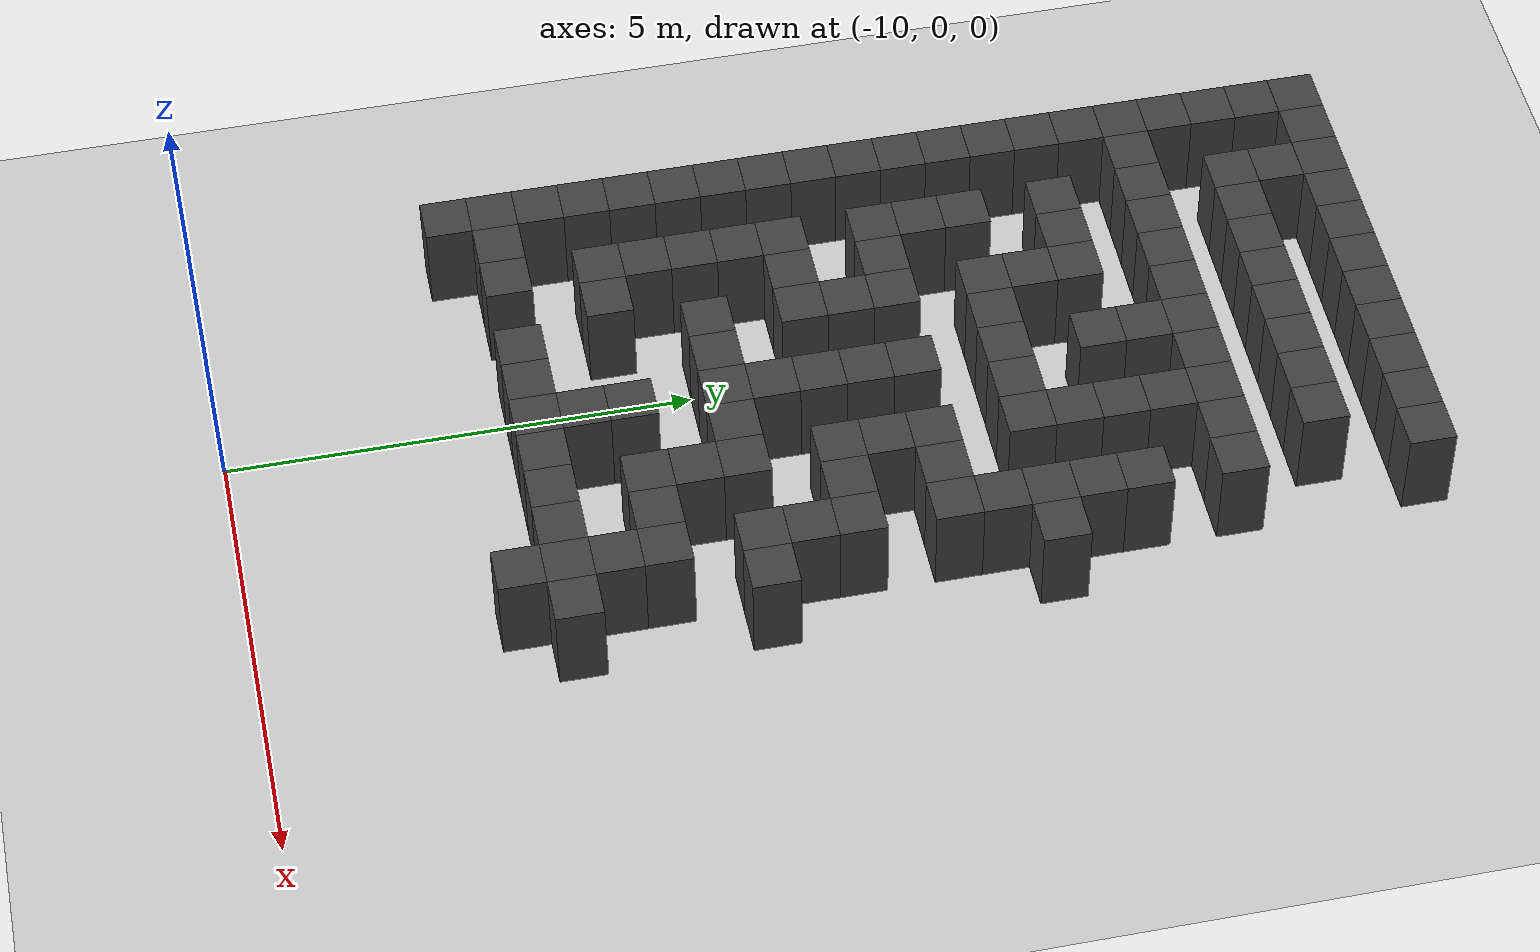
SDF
<sdf version="1.7">
 <world name="map_18914">
  <model name="ground_plane">
   <static>true</static>
   <link name="link">
    <collision name="collision">
     <geometry><plane><normal>0 0 1</normal><size>200 200</size></plane></geometry>
    </collision>
    <visual name="visual">
     <geometry><plane><normal>0 0 1</normal><size>200 200</size></plane></geometry>
     <material><ambient>0.8 0.8 0.8 1</ambient><diffuse>0.8 0.8 0.8 1</diffuse></material>
    </visual>
   </link>
  </model>
  <model name="maze_environment">
   <static>true</static>
   <link name="wall_0">
    <pose>-12.250 12.250 0.500 0 0 0</pose>
    <collision name="col"><geometry><box><size>0.5 0.5 1.0</size></box></geometry></collision>
    <visual name="vis">
     <geometry><box><size>0.5 0.5 1.0</size></box></geometry>
     <material><ambient>0.15 0.15 0.15 1</ambient><diffuse>0.25 0.25 0.25 1</diffuse></material>
    </visual>
   </link>
   <link name="wall_1">
    <pose>-11.750 12.250 0.500 0 0 0</pose>
    <collision name="col"><geometry><box><size>0.5 0.5 1.0</size></box></geometry></collision>
    <visual name="vis">
     <geometry><box><size>0.5 0.5 1.0</size></box></geometry>
     <material><ambient>0.15 0.15 0.15 1</ambient><diffuse>0.25 0.25 0.25 1</diffuse></material>
    </visual>
   </link>
   <link name="wall_2">
    <pose>-11.250 12.250 0.500 0 0 0</pose>
    <collision name="col"><geometry><box><size>0.5 0.5 1.0</size></box></geometry></collision>
    <visual name="vis">
     <geometry><box><size>0.5 0.5 1.0</size></box></geometry>
     <material><ambient>0.15 0.15 0.15 1</ambient><diffuse>0.25 0.25 0.25 1</diffuse></material>
    </visual>
   </link>
   <link name="wall_3">
    <pose>-10.750 12.250 0.500 0 0 0</pose>
    <collision name="col"><geometry><box><size>0.5 0.5 1.0</size></box></geometry></collision>
    <visual name="vis">
     <geometry><box><size>0.5 0.5 1.0</size></box></geometry>
     <material><ambient>0.15 0.15 0.15 1</ambient><diffuse>0.25 0.25 0.25 1</diffuse></material>
    </visual>
   </link>
   <link name="wall_4">
    <pose>-10.250 12.250 0.500 0 0 0</pose>
    <collision name="col"><geometry><box><size>0.5 0.5 1.0</size></box></geometry></collision>
    <visual name="vis">
     <geometry><box><size>0.5 0.5 1.0</size></box></geometry>
     <material><ambient>0.15 0.15 0.15 1</ambient><diffuse>0.25 0.25 0.25 1</diffuse></material>
    </visual>
   </link>
   <link name="wall_5">
    <pose>-9.750 12.250 0.500 0 0 0</pose>
    <collision name="col"><geometry><box><size>0.5 0.5 1.0</size></box></geometry></collision>
    <visual name="vis">
     <geometry><box><size>0.5 0.5 1.0</size></box></geometry>
     <material><ambient>0.15 0.15 0.15 1</ambient><diffuse>0.25 0.25 0.25 1</diffuse></material>
    </visual>
   </link>
   <link name="wall_6">
    <pose>-9.250 12.250 0.500 0 0 0</pose>
    <collision name="col"><geometry><box><size>0.5 0.5 1.0</size></box></geometry></collision>
    <visual name="vis">
     <geometry><box><size>0.5 0.5 1.0</size></box></geometry>
     <material><ambient>0.15 0.15 0.15 1</ambient><diffuse>0.25 0.25 0.25 1</diffuse></material>
    </visual>
   </link>
   <link name="wall_7">
    <pose>-8.750 12.250 0.500 0 0 0</pose>
    <collision name="col"><geometry><box><size>0.5 0.5 1.0</size></box></geometry></collision>
    <visual name="vis">
     <geometry><box><size>0.5 0.5 1.0</size></box></geometry>
     <material><ambient>0.15 0.15 0.15 1</ambient><diffuse>0.25 0.25 0.25 1</diffuse></material>
    </visual>
   </link>
   <link name="wall_8">
    <pose>-8.250 12.250 0.500 0 0 0</pose>
    <collision name="col"><geometry><box><size>0.5 0.5 1.0</size></box></geometry></collision>
    <visual name="vis">
     <geometry><box><size>0.5 0.5 1.0</size></box></geometry>
     <material><ambient>0.15 0.15 0.15 1</ambient><diffuse>0.25 0.25 0.25 1</diffuse></material>
    </visual>
   </link>
   <link name="wall_9">
    <pose>-7.750 12.250 0.500 0 0 0</pose>
    <collision name="col"><geometry><box><size>0.5 0.5 1.0</size></box></geometry></collision>
    <visual name="vis">
     <geometry><box><size>0.5 0.5 1.0</size></box></geometry>
     <material><ambient>0.15 0.15 0.15 1</ambient><diffuse>0.25 0.25 0.25 1</diffuse></material>
    </visual>
   </link>
   <link name="wall_10">
    <pose>-7.250 12.250 0.500 0 0 0</pose>
    <collision name="col"><geometry><box><size>0.5 0.5 1.0</size></box></geometry></collision>
    <visual name="vis">
     <geometry><box><size>0.5 0.5 1.0</size></box></geometry>
     <material><ambient>0.15 0.15 0.15 1</ambient><diffuse>0.25 0.25 0.25 1</diffuse></material>
    </visual>
   </link>
   <link name="wall_50">
    <pose>-12.250 11.750 0.500 0 0 0</pose>
    <collision name="col"><geometry><box><size>0.5 0.5 1.0</size></box></geometry></collision>
    <visual name="vis">
     <geometry><box><size>0.5 0.5 1.0</size></box></geometry>
     <material><ambient>0.15 0.15 0.15 1</ambient><diffuse>0.25 0.25 0.25 1</diffuse></material>
    </visual>
   </link>
   <link name="wall_51">
    <pose>-11.250 11.750 0.500 0 0 0</pose>
    <collision name="col"><geometry><box><size>0.5 0.5 1.0</size></box></geometry></collision>
    <visual name="vis">
     <geometry><box><size>0.5 0.5 1.0</size></box></geometry>
     <material><ambient>0.15 0.15 0.15 1</ambient><diffuse>0.25 0.25 0.25 1</diffuse></material>
    </visual>
   </link>
   <link name="wall_57">
    <pose>-12.250 11.250 0.500 0 0 0</pose>
    <collision name="col"><geometry><box><size>0.5 0.5 1.0</size></box></geometry></collision>
    <visual name="vis">
     <geometry><box><size>0.5 0.5 1.0</size></box></geometry>
     <material><ambient>0.15 0.15 0.15 1</ambient><diffuse>0.25 0.25 0.25 1</diffuse></material>
    </visual>
   </link>
   <link name="wall_58">
    <pose>-11.250 11.250 0.500 0 0 0</pose>
    <collision name="col"><geometry><box><size>0.5 0.5 1.0</size></box></geometry></collision>
    <visual name="vis">
     <geometry><box><size>0.5 0.5 1.0</size></box></geometry>
     <material><ambient>0.15 0.15 0.15 1</ambient><diffuse>0.25 0.25 0.25 1</diffuse></material>
    </visual>
   </link>
   <link name="wall_59">
    <pose>-10.750 11.250 0.500 0 0 0</pose>
    <collision name="col"><geometry><box><size>0.5 0.5 1.0</size></box></geometry></collision>
    <visual name="vis">
     <geometry><box><size>0.5 0.5 1.0</size></box></geometry>
     <material><ambient>0.15 0.15 0.15 1</ambient><diffuse>0.25 0.25 0.25 1</diffuse></material>
    </visual>
   </link>
   <link name="wall_60">
    <pose>-10.250 11.250 0.500 0 0 0</pose>
    <collision name="col"><geometry><box><size>0.5 0.5 1.0</size></box></geometry></collision>
    <visual name="vis">
     <geometry><box><size>0.5 0.5 1.0</size></box></geometry>
     <material><ambient>0.15 0.15 0.15 1</ambient><diffuse>0.25 0.25 0.25 1</diffuse></material>
    </visual>
   </link>
   <link name="wall_61">
    <pose>-9.750 11.250 0.500 0 0 0</pose>
    <collision name="col"><geometry><box><size>0.5 0.5 1.0</size></box></geometry></collision>
    <visual name="vis">
     <geometry><box><size>0.5 0.5 1.0</size></box></geometry>
     <material><ambient>0.15 0.15 0.15 1</ambient><diffuse>0.25 0.25 0.25 1</diffuse></material>
    </visual>
   </link>
   <link name="wall_62">
    <pose>-9.250 11.250 0.500 0 0 0</pose>
    <collision name="col"><geometry><box><size>0.5 0.5 1.0</size></box></geometry></collision>
    <visual name="vis">
     <geometry><box><size>0.5 0.5 1.0</size></box></geometry>
     <material><ambient>0.15 0.15 0.15 1</ambient><diffuse>0.25 0.25 0.25 1</diffuse></material>
    </visual>
   </link>
   <link name="wall_63">
    <pose>-8.750 11.250 0.500 0 0 0</pose>
    <collision name="col"><geometry><box><size>0.5 0.5 1.0</size></box></geometry></collision>
    <visual name="vis">
     <geometry><box><size>0.5 0.5 1.0</size></box></geometry>
     <material><ambient>0.15 0.15 0.15 1</ambient><diffuse>0.25 0.25 0.25 1</diffuse></material>
    </visual>
   </link>
   <link name="wall_64">
    <pose>-8.250 11.250 0.500 0 0 0</pose>
    <collision name="col"><geometry><box><size>0.5 0.5 1.0</size></box></geometry></collision>
    <visual name="vis">
     <geometry><box><size>0.5 0.5 1.0</size></box></geometry>
     <material><ambient>0.15 0.15 0.15 1</ambient><diffuse>0.25 0.25 0.25 1</diffuse></material>
    </visual>
   </link>
   <link name="wall_65">
    <pose>-7.750 11.250 0.500 0 0 0</pose>
    <collision name="col"><geometry><box><size>0.5 0.5 1.0</size></box></geometry></collision>
    <visual name="vis">
     <geometry><box><size>0.5 0.5 1.0</size></box></geometry>
     <material><ambient>0.15 0.15 0.15 1</ambient><diffuse>0.25 0.25 0.25 1</diffuse></material>
    </visual>
   </link>
   <link name="wall_95">
    <pose>-12.250 10.750 0.500 0 0 0</pose>
    <collision name="col"><geometry><box><size>0.5 0.5 1.0</size></box></geometry></collision>
    <visual name="vis">
     <geometry><box><size>0.5 0.5 1.0</size></box></geometry>
     <material><ambient>0.15 0.15 0.15 1</ambient><diffuse>0.25 0.25 0.25 1</diffuse></material>
    </visual>
   </link>
   <link name="wall_108">
    <pose>-12.250 10.250 0.500 0 0 0</pose>
    <collision name="col"><geometry><box><size>0.5 0.5 1.0</size></box></geometry></collision>
    <visual name="vis">
     <geometry><box><size>0.5 0.5 1.0</size></box></geometry>
     <material><ambient>0.15 0.15 0.15 1</ambient><diffuse>0.25 0.25 0.25 1</diffuse></material>
    </visual>
   </link>
   <link name="wall_109">
    <pose>-11.750 10.250 0.500 0 0 0</pose>
    <collision name="col"><geometry><box><size>0.5 0.5 1.0</size></box></geometry></collision>
    <visual name="vis">
     <geometry><box><size>0.5 0.5 1.0</size></box></geometry>
     <material><ambient>0.15 0.15 0.15 1</ambient><diffuse>0.25 0.25 0.25 1</diffuse></material>
    </visual>
   </link>
   <link name="wall_110">
    <pose>-11.250 10.250 0.500 0 0 0</pose>
    <collision name="col"><geometry><box><size>0.5 0.5 1.0</size></box></geometry></collision>
    <visual name="vis">
     <geometry><box><size>0.5 0.5 1.0</size></box></geometry>
     <material><ambient>0.15 0.15 0.15 1</ambient><diffuse>0.25 0.25 0.25 1</diffuse></material>
    </visual>
   </link>
   <link name="wall_111">
    <pose>-10.750 10.250 0.500 0 0 0</pose>
    <collision name="col"><geometry><box><size>0.5 0.5 1.0</size></box></geometry></collision>
    <visual name="vis">
     <geometry><box><size>0.5 0.5 1.0</size></box></geometry>
     <material><ambient>0.15 0.15 0.15 1</ambient><diffuse>0.25 0.25 0.25 1</diffuse></material>
    </visual>
   </link>
   <link name="wall_112">
    <pose>-10.250 10.250 0.500 0 0 0</pose>
    <collision name="col"><geometry><box><size>0.5 0.5 1.0</size></box></geometry></collision>
    <visual name="vis">
     <geometry><box><size>0.5 0.5 1.0</size></box></geometry>
     <material><ambient>0.15 0.15 0.15 1</ambient><diffuse>0.25 0.25 0.25 1</diffuse></material>
    </visual>
   </link>
   <link name="wall_113">
    <pose>-9.750 10.250 0.500 0 0 0</pose>
    <collision name="col"><geometry><box><size>0.5 0.5 1.0</size></box></geometry></collision>
    <visual name="vis">
     <geometry><box><size>0.5 0.5 1.0</size></box></geometry>
     <material><ambient>0.15 0.15 0.15 1</ambient><diffuse>0.25 0.25 0.25 1</diffuse></material>
    </visual>
   </link>
   <link name="wall_114">
    <pose>-9.250 10.250 0.500 0 0 0</pose>
    <collision name="col"><geometry><box><size>0.5 0.5 1.0</size></box></geometry></collision>
    <visual name="vis">
     <geometry><box><size>0.5 0.5 1.0</size></box></geometry>
     <material><ambient>0.15 0.15 0.15 1</ambient><diffuse>0.25 0.25 0.25 1</diffuse></material>
    </visual>
   </link>
   <link name="wall_115">
    <pose>-8.750 10.250 0.500 0 0 0</pose>
    <collision name="col"><geometry><box><size>0.5 0.5 1.0</size></box></geometry></collision>
    <visual name="vis">
     <geometry><box><size>0.5 0.5 1.0</size></box></geometry>
     <material><ambient>0.15 0.15 0.15 1</ambient><diffuse>0.25 0.25 0.25 1</diffuse></material>
    </visual>
   </link>
   <link name="wall_116">
    <pose>-8.250 10.250 0.500 0 0 0</pose>
    <collision name="col"><geometry><box><size>0.5 0.5 1.0</size></box></geometry></collision>
    <visual name="vis">
     <geometry><box><size>0.5 0.5 1.0</size></box></geometry>
     <material><ambient>0.15 0.15 0.15 1</ambient><diffuse>0.25 0.25 0.25 1</diffuse></material>
    </visual>
   </link>
   <link name="wall_117">
    <pose>-7.750 10.250 0.500 0 0 0</pose>
    <collision name="col"><geometry><box><size>0.5 0.5 1.0</size></box></geometry></collision>
    <visual name="vis">
     <geometry><box><size>0.5 0.5 1.0</size></box></geometry>
     <material><ambient>0.15 0.15 0.15 1</ambient><diffuse>0.25 0.25 0.25 1</diffuse></material>
    </visual>
   </link>
   <link name="wall_118">
    <pose>-7.250 10.250 0.500 0 0 0</pose>
    <collision name="col"><geometry><box><size>0.5 0.5 1.0</size></box></geometry></collision>
    <visual name="vis">
     <geometry><box><size>0.5 0.5 1.0</size></box></geometry>
     <material><ambient>0.15 0.15 0.15 1</ambient><diffuse>0.25 0.25 0.25 1</diffuse></material>
    </visual>
   </link>
   <link name="wall_149">
    <pose>-12.250 9.750 0.500 0 0 0</pose>
    <collision name="col"><geometry><box><size>0.5 0.5 1.0</size></box></geometry></collision>
    <visual name="vis">
     <geometry><box><size>0.5 0.5 1.0</size></box></geometry>
     <material><ambient>0.15 0.15 0.15 1</ambient><diffuse>0.25 0.25 0.25 1</diffuse></material>
    </visual>
   </link>
   <link name="wall_150">
    <pose>-9.250 9.750 0.500 0 0 0</pose>
    <collision name="col"><geometry><box><size>0.5 0.5 1.0</size></box></geometry></collision>
    <visual name="vis">
     <geometry><box><size>0.5 0.5 1.0</size></box></geometry>
     <material><ambient>0.15 0.15 0.15 1</ambient><diffuse>0.25 0.25 0.25 1</diffuse></material>
    </visual>
   </link>
   <link name="wall_151">
    <pose>-8.250 9.750 0.500 0 0 0</pose>
    <collision name="col"><geometry><box><size>0.5 0.5 1.0</size></box></geometry></collision>
    <visual name="vis">
     <geometry><box><size>0.5 0.5 1.0</size></box></geometry>
     <material><ambient>0.15 0.15 0.15 1</ambient><diffuse>0.25 0.25 0.25 1</diffuse></material>
    </visual>
   </link>
   <link name="wall_159">
    <pose>-12.250 9.250 0.500 0 0 0</pose>
    <collision name="col"><geometry><box><size>0.5 0.5 1.0</size></box></geometry></collision>
    <visual name="vis">
     <geometry><box><size>0.5 0.5 1.0</size></box></geometry>
     <material><ambient>0.15 0.15 0.15 1</ambient><diffuse>0.25 0.25 0.25 1</diffuse></material>
    </visual>
   </link>
   <link name="wall_160">
    <pose>-11.250 9.250 0.500 0 0 0</pose>
    <collision name="col"><geometry><box><size>0.5 0.5 1.0</size></box></geometry></collision>
    <visual name="vis">
     <geometry><box><size>0.5 0.5 1.0</size></box></geometry>
     <material><ambient>0.15 0.15 0.15 1</ambient><diffuse>0.25 0.25 0.25 1</diffuse></material>
    </visual>
   </link>
   <link name="wall_161">
    <pose>-10.750 9.250 0.500 0 0 0</pose>
    <collision name="col"><geometry><box><size>0.5 0.5 1.0</size></box></geometry></collision>
    <visual name="vis">
     <geometry><box><size>0.5 0.5 1.0</size></box></geometry>
     <material><ambient>0.15 0.15 0.15 1</ambient><diffuse>0.25 0.25 0.25 1</diffuse></material>
    </visual>
   </link>
   <link name="wall_162">
    <pose>-10.250 9.250 0.500 0 0 0</pose>
    <collision name="col"><geometry><box><size>0.5 0.5 1.0</size></box></geometry></collision>
    <visual name="vis">
     <geometry><box><size>0.5 0.5 1.0</size></box></geometry>
     <material><ambient>0.15 0.15 0.15 1</ambient><diffuse>0.25 0.25 0.25 1</diffuse></material>
    </visual>
   </link>
   <link name="wall_163">
    <pose>-9.250 9.250 0.500 0 0 0</pose>
    <collision name="col"><geometry><box><size>0.5 0.5 1.0</size></box></geometry></collision>
    <visual name="vis">
     <geometry><box><size>0.5 0.5 1.0</size></box></geometry>
     <material><ambient>0.15 0.15 0.15 1</ambient><diffuse>0.25 0.25 0.25 1</diffuse></material>
    </visual>
   </link>
   <link name="wall_164">
    <pose>-8.250 9.250 0.500 0 0 0</pose>
    <collision name="col"><geometry><box><size>0.5 0.5 1.0</size></box></geometry></collision>
    <visual name="vis">
     <geometry><box><size>0.5 0.5 1.0</size></box></geometry>
     <material><ambient>0.15 0.15 0.15 1</ambient><diffuse>0.25 0.25 0.25 1</diffuse></material>
    </visual>
   </link>
   <link name="wall_165">
    <pose>-7.250 9.250 0.500 0 0 0</pose>
    <collision name="col"><geometry><box><size>0.5 0.5 1.0</size></box></geometry></collision>
    <visual name="vis">
     <geometry><box><size>0.5 0.5 1.0</size></box></geometry>
     <material><ambient>0.15 0.15 0.15 1</ambient><diffuse>0.25 0.25 0.25 1</diffuse></material>
    </visual>
   </link>
   <link name="wall_197">
    <pose>-12.250 8.750 0.500 0 0 0</pose>
    <collision name="col"><geometry><box><size>0.5 0.5 1.0</size></box></geometry></collision>
    <visual name="vis">
     <geometry><box><size>0.5 0.5 1.0</size></box></geometry>
     <material><ambient>0.15 0.15 0.15 1</ambient><diffuse>0.25 0.25 0.25 1</diffuse></material>
    </visual>
   </link>
   <link name="wall_198">
    <pose>-10.250 8.750 0.500 0 0 0</pose>
    <collision name="col"><geometry><box><size>0.5 0.5 1.0</size></box></geometry></collision>
    <visual name="vis">
     <geometry><box><size>0.5 0.5 1.0</size></box></geometry>
     <material><ambient>0.15 0.15 0.15 1</ambient><diffuse>0.25 0.25 0.25 1</diffuse></material>
    </visual>
   </link>
   <link name="wall_199">
    <pose>-8.250 8.750 0.500 0 0 0</pose>
    <collision name="col"><geometry><box><size>0.5 0.5 1.0</size></box></geometry></collision>
    <visual name="vis">
     <geometry><box><size>0.5 0.5 1.0</size></box></geometry>
     <material><ambient>0.15 0.15 0.15 1</ambient><diffuse>0.25 0.25 0.25 1</diffuse></material>
    </visual>
   </link>
   <link name="wall_200">
    <pose>-7.250 8.750 0.500 0 0 0</pose>
    <collision name="col"><geometry><box><size>0.5 0.5 1.0</size></box></geometry></collision>
    <visual name="vis">
     <geometry><box><size>0.5 0.5 1.0</size></box></geometry>
     <material><ambient>0.15 0.15 0.15 1</ambient><diffuse>0.25 0.25 0.25 1</diffuse></material>
    </visual>
   </link>
   <link name="wall_209">
    <pose>-12.250 8.250 0.500 0 0 0</pose>
    <collision name="col"><geometry><box><size>0.5 0.5 1.0</size></box></geometry></collision>
    <visual name="vis">
     <geometry><box><size>0.5 0.5 1.0</size></box></geometry>
     <material><ambient>0.15 0.15 0.15 1</ambient><diffuse>0.25 0.25 0.25 1</diffuse></material>
    </visual>
   </link>
   <link name="wall_210">
    <pose>-11.250 8.250 0.500 0 0 0</pose>
    <collision name="col"><geometry><box><size>0.5 0.5 1.0</size></box></geometry></collision>
    <visual name="vis">
     <geometry><box><size>0.5 0.5 1.0</size></box></geometry>
     <material><ambient>0.15 0.15 0.15 1</ambient><diffuse>0.25 0.25 0.25 1</diffuse></material>
    </visual>
   </link>
   <link name="wall_211">
    <pose>-10.250 8.250 0.500 0 0 0</pose>
    <collision name="col"><geometry><box><size>0.5 0.5 1.0</size></box></geometry></collision>
    <visual name="vis">
     <geometry><box><size>0.5 0.5 1.0</size></box></geometry>
     <material><ambient>0.15 0.15 0.15 1</ambient><diffuse>0.25 0.25 0.25 1</diffuse></material>
    </visual>
   </link>
   <link name="wall_212">
    <pose>-9.750 8.250 0.500 0 0 0</pose>
    <collision name="col"><geometry><box><size>0.5 0.5 1.0</size></box></geometry></collision>
    <visual name="vis">
     <geometry><box><size>0.5 0.5 1.0</size></box></geometry>
     <material><ambient>0.15 0.15 0.15 1</ambient><diffuse>0.25 0.25 0.25 1</diffuse></material>
    </visual>
   </link>
   <link name="wall_213">
    <pose>-9.250 8.250 0.500 0 0 0</pose>
    <collision name="col"><geometry><box><size>0.5 0.5 1.0</size></box></geometry></collision>
    <visual name="vis">
     <geometry><box><size>0.5 0.5 1.0</size></box></geometry>
     <material><ambient>0.15 0.15 0.15 1</ambient><diffuse>0.25 0.25 0.25 1</diffuse></material>
    </visual>
   </link>
   <link name="wall_214">
    <pose>-8.750 8.250 0.500 0 0 0</pose>
    <collision name="col"><geometry><box><size>0.5 0.5 1.0</size></box></geometry></collision>
    <visual name="vis">
     <geometry><box><size>0.5 0.5 1.0</size></box></geometry>
     <material><ambient>0.15 0.15 0.15 1</ambient><diffuse>0.25 0.25 0.25 1</diffuse></material>
    </visual>
   </link>
   <link name="wall_215">
    <pose>-8.250 8.250 0.500 0 0 0</pose>
    <collision name="col"><geometry><box><size>0.5 0.5 1.0</size></box></geometry></collision>
    <visual name="vis">
     <geometry><box><size>0.5 0.5 1.0</size></box></geometry>
     <material><ambient>0.15 0.15 0.15 1</ambient><diffuse>0.25 0.25 0.25 1</diffuse></material>
    </visual>
   </link>
   <link name="wall_216">
    <pose>-7.250 8.250 0.500 0 0 0</pose>
    <collision name="col"><geometry><box><size>0.5 0.5 1.0</size></box></geometry></collision>
    <visual name="vis">
     <geometry><box><size>0.5 0.5 1.0</size></box></geometry>
     <material><ambient>0.15 0.15 0.15 1</ambient><diffuse>0.25 0.25 0.25 1</diffuse></material>
    </visual>
   </link>
   <link name="wall_217">
    <pose>-6.750 8.250 0.500 0 0 0</pose>
    <collision name="col"><geometry><box><size>0.5 0.5 1.0</size></box></geometry></collision>
    <visual name="vis">
     <geometry><box><size>0.5 0.5 1.0</size></box></geometry>
     <material><ambient>0.15 0.15 0.15 1</ambient><diffuse>0.25 0.25 0.25 1</diffuse></material>
    </visual>
   </link>
   <link name="wall_251">
    <pose>-12.250 7.750 0.500 0 0 0</pose>
    <collision name="col"><geometry><box><size>0.5 0.5 1.0</size></box></geometry></collision>
    <visual name="vis">
     <geometry><box><size>0.5 0.5 1.0</size></box></geometry>
     <material><ambient>0.15 0.15 0.15 1</ambient><diffuse>0.25 0.25 0.25 1</diffuse></material>
    </visual>
   </link>
   <link name="wall_252">
    <pose>-11.250 7.750 0.500 0 0 0</pose>
    <collision name="col"><geometry><box><size>0.5 0.5 1.0</size></box></geometry></collision>
    <visual name="vis">
     <geometry><box><size>0.5 0.5 1.0</size></box></geometry>
     <material><ambient>0.15 0.15 0.15 1</ambient><diffuse>0.25 0.25 0.25 1</diffuse></material>
    </visual>
   </link>
   <link name="wall_253">
    <pose>-7.250 7.750 0.500 0 0 0</pose>
    <collision name="col"><geometry><box><size>0.5 0.5 1.0</size></box></geometry></collision>
    <visual name="vis">
     <geometry><box><size>0.5 0.5 1.0</size></box></geometry>
     <material><ambient>0.15 0.15 0.15 1</ambient><diffuse>0.25 0.25 0.25 1</diffuse></material>
    </visual>
   </link>
   <link name="wall_259">
    <pose>-12.250 7.250 0.500 0 0 0</pose>
    <collision name="col"><geometry><box><size>0.5 0.5 1.0</size></box></geometry></collision>
    <visual name="vis">
     <geometry><box><size>0.5 0.5 1.0</size></box></geometry>
     <material><ambient>0.15 0.15 0.15 1</ambient><diffuse>0.25 0.25 0.25 1</diffuse></material>
    </visual>
   </link>
   <link name="wall_260">
    <pose>-11.250 7.250 0.500 0 0 0</pose>
    <collision name="col"><geometry><box><size>0.5 0.5 1.0</size></box></geometry></collision>
    <visual name="vis">
     <geometry><box><size>0.5 0.5 1.0</size></box></geometry>
     <material><ambient>0.15 0.15 0.15 1</ambient><diffuse>0.25 0.25 0.25 1</diffuse></material>
    </visual>
   </link>
   <link name="wall_261">
    <pose>-10.750 7.250 0.500 0 0 0</pose>
    <collision name="col"><geometry><box><size>0.5 0.5 1.0</size></box></geometry></collision>
    <visual name="vis">
     <geometry><box><size>0.5 0.5 1.0</size></box></geometry>
     <material><ambient>0.15 0.15 0.15 1</ambient><diffuse>0.25 0.25 0.25 1</diffuse></material>
    </visual>
   </link>
   <link name="wall_262">
    <pose>-10.250 7.250 0.500 0 0 0</pose>
    <collision name="col"><geometry><box><size>0.5 0.5 1.0</size></box></geometry></collision>
    <visual name="vis">
     <geometry><box><size>0.5 0.5 1.0</size></box></geometry>
     <material><ambient>0.15 0.15 0.15 1</ambient><diffuse>0.25 0.25 0.25 1</diffuse></material>
    </visual>
   </link>
   <link name="wall_263">
    <pose>-9.250 7.250 0.500 0 0 0</pose>
    <collision name="col"><geometry><box><size>0.5 0.5 1.0</size></box></geometry></collision>
    <visual name="vis">
     <geometry><box><size>0.5 0.5 1.0</size></box></geometry>
     <material><ambient>0.15 0.15 0.15 1</ambient><diffuse>0.25 0.25 0.25 1</diffuse></material>
    </visual>
   </link>
   <link name="wall_264">
    <pose>-8.250 7.250 0.500 0 0 0</pose>
    <collision name="col"><geometry><box><size>0.5 0.5 1.0</size></box></geometry></collision>
    <visual name="vis">
     <geometry><box><size>0.5 0.5 1.0</size></box></geometry>
     <material><ambient>0.15 0.15 0.15 1</ambient><diffuse>0.25 0.25 0.25 1</diffuse></material>
    </visual>
   </link>
   <link name="wall_265">
    <pose>-7.750 7.250 0.500 0 0 0</pose>
    <collision name="col"><geometry><box><size>0.5 0.5 1.0</size></box></geometry></collision>
    <visual name="vis">
     <geometry><box><size>0.5 0.5 1.0</size></box></geometry>
     <material><ambient>0.15 0.15 0.15 1</ambient><diffuse>0.25 0.25 0.25 1</diffuse></material>
    </visual>
   </link>
   <link name="wall_266">
    <pose>-7.250 7.250 0.500 0 0 0</pose>
    <collision name="col"><geometry><box><size>0.5 0.5 1.0</size></box></geometry></collision>
    <visual name="vis">
     <geometry><box><size>0.5 0.5 1.0</size></box></geometry>
     <material><ambient>0.15 0.15 0.15 1</ambient><diffuse>0.25 0.25 0.25 1</diffuse></material>
    </visual>
   </link>
   <link name="wall_300">
    <pose>-12.250 6.750 0.500 0 0 0</pose>
    <collision name="col"><geometry><box><size>0.5 0.5 1.0</size></box></geometry></collision>
    <visual name="vis">
     <geometry><box><size>0.5 0.5 1.0</size></box></geometry>
     <material><ambient>0.15 0.15 0.15 1</ambient><diffuse>0.25 0.25 0.25 1</diffuse></material>
    </visual>
   </link>
   <link name="wall_301">
    <pose>-10.250 6.750 0.500 0 0 0</pose>
    <collision name="col"><geometry><box><size>0.5 0.5 1.0</size></box></geometry></collision>
    <visual name="vis">
     <geometry><box><size>0.5 0.5 1.0</size></box></geometry>
     <material><ambient>0.15 0.15 0.15 1</ambient><diffuse>0.25 0.25 0.25 1</diffuse></material>
    </visual>
   </link>
   <link name="wall_302">
    <pose>-9.250 6.750 0.500 0 0 0</pose>
    <collision name="col"><geometry><box><size>0.5 0.5 1.0</size></box></geometry></collision>
    <visual name="vis">
     <geometry><box><size>0.5 0.5 1.0</size></box></geometry>
     <material><ambient>0.15 0.15 0.15 1</ambient><diffuse>0.25 0.25 0.25 1</diffuse></material>
    </visual>
   </link>
   <link name="wall_303">
    <pose>-8.250 6.750 0.500 0 0 0</pose>
    <collision name="col"><geometry><box><size>0.5 0.5 1.0</size></box></geometry></collision>
    <visual name="vis">
     <geometry><box><size>0.5 0.5 1.0</size></box></geometry>
     <material><ambient>0.15 0.15 0.15 1</ambient><diffuse>0.25 0.25 0.25 1</diffuse></material>
    </visual>
   </link>
   <link name="wall_312">
    <pose>-12.250 6.250 0.500 0 0 0</pose>
    <collision name="col"><geometry><box><size>0.5 0.5 1.0</size></box></geometry></collision>
    <visual name="vis">
     <geometry><box><size>0.5 0.5 1.0</size></box></geometry>
     <material><ambient>0.15 0.15 0.15 1</ambient><diffuse>0.25 0.25 0.25 1</diffuse></material>
    </visual>
   </link>
   <link name="wall_313">
    <pose>-11.250 6.250 0.500 0 0 0</pose>
    <collision name="col"><geometry><box><size>0.5 0.5 1.0</size></box></geometry></collision>
    <visual name="vis">
     <geometry><box><size>0.5 0.5 1.0</size></box></geometry>
     <material><ambient>0.15 0.15 0.15 1</ambient><diffuse>0.25 0.25 0.25 1</diffuse></material>
    </visual>
   </link>
   <link name="wall_314">
    <pose>-10.750 6.250 0.500 0 0 0</pose>
    <collision name="col"><geometry><box><size>0.5 0.5 1.0</size></box></geometry></collision>
    <visual name="vis">
     <geometry><box><size>0.5 0.5 1.0</size></box></geometry>
     <material><ambient>0.15 0.15 0.15 1</ambient><diffuse>0.25 0.25 0.25 1</diffuse></material>
    </visual>
   </link>
   <link name="wall_315">
    <pose>-10.250 6.250 0.500 0 0 0</pose>
    <collision name="col"><geometry><box><size>0.5 0.5 1.0</size></box></geometry></collision>
    <visual name="vis">
     <geometry><box><size>0.5 0.5 1.0</size></box></geometry>
     <material><ambient>0.15 0.15 0.15 1</ambient><diffuse>0.25 0.25 0.25 1</diffuse></material>
    </visual>
   </link>
   <link name="wall_316">
    <pose>-9.250 6.250 0.500 0 0 0</pose>
    <collision name="col"><geometry><box><size>0.5 0.5 1.0</size></box></geometry></collision>
    <visual name="vis">
     <geometry><box><size>0.5 0.5 1.0</size></box></geometry>
     <material><ambient>0.15 0.15 0.15 1</ambient><diffuse>0.25 0.25 0.25 1</diffuse></material>
    </visual>
   </link>
   <link name="wall_317">
    <pose>-8.250 6.250 0.500 0 0 0</pose>
    <collision name="col"><geometry><box><size>0.5 0.5 1.0</size></box></geometry></collision>
    <visual name="vis">
     <geometry><box><size>0.5 0.5 1.0</size></box></geometry>
     <material><ambient>0.15 0.15 0.15 1</ambient><diffuse>0.25 0.25 0.25 1</diffuse></material>
    </visual>
   </link>
   <link name="wall_318">
    <pose>-7.750 6.250 0.500 0 0 0</pose>
    <collision name="col"><geometry><box><size>0.5 0.5 1.0</size></box></geometry></collision>
    <visual name="vis">
     <geometry><box><size>0.5 0.5 1.0</size></box></geometry>
     <material><ambient>0.15 0.15 0.15 1</ambient><diffuse>0.25 0.25 0.25 1</diffuse></material>
    </visual>
   </link>
   <link name="wall_319">
    <pose>-7.250 6.250 0.500 0 0 0</pose>
    <collision name="col"><geometry><box><size>0.5 0.5 1.0</size></box></geometry></collision>
    <visual name="vis">
     <geometry><box><size>0.5 0.5 1.0</size></box></geometry>
     <material><ambient>0.15 0.15 0.15 1</ambient><diffuse>0.25 0.25 0.25 1</diffuse></material>
    </visual>
   </link>
   <link name="wall_348">
    <pose>-12.250 5.750 0.500 0 0 0</pose>
    <collision name="col"><geometry><box><size>0.5 0.5 1.0</size></box></geometry></collision>
    <visual name="vis">
     <geometry><box><size>0.5 0.5 1.0</size></box></geometry>
     <material><ambient>0.15 0.15 0.15 1</ambient><diffuse>0.25 0.25 0.25 1</diffuse></material>
    </visual>
   </link>
   <link name="wall_349">
    <pose>-11.250 5.750 0.500 0 0 0</pose>
    <collision name="col"><geometry><box><size>0.5 0.5 1.0</size></box></geometry></collision>
    <visual name="vis">
     <geometry><box><size>0.5 0.5 1.0</size></box></geometry>
     <material><ambient>0.15 0.15 0.15 1</ambient><diffuse>0.25 0.25 0.25 1</diffuse></material>
    </visual>
   </link>
   <link name="wall_350">
    <pose>-9.250 5.750 0.500 0 0 0</pose>
    <collision name="col"><geometry><box><size>0.5 0.5 1.0</size></box></geometry></collision>
    <visual name="vis">
     <geometry><box><size>0.5 0.5 1.0</size></box></geometry>
     <material><ambient>0.15 0.15 0.15 1</ambient><diffuse>0.25 0.25 0.25 1</diffuse></material>
    </visual>
   </link>
   <link name="wall_351">
    <pose>-7.250 5.750 0.500 0 0 0</pose>
    <collision name="col"><geometry><box><size>0.5 0.5 1.0</size></box></geometry></collision>
    <visual name="vis">
     <geometry><box><size>0.5 0.5 1.0</size></box></geometry>
     <material><ambient>0.15 0.15 0.15 1</ambient><diffuse>0.25 0.25 0.25 1</diffuse></material>
    </visual>
   </link>
   <link name="wall_362">
    <pose>-12.250 5.250 0.500 0 0 0</pose>
    <collision name="col"><geometry><box><size>0.5 0.5 1.0</size></box></geometry></collision>
    <visual name="vis">
     <geometry><box><size>0.5 0.5 1.0</size></box></geometry>
     <material><ambient>0.15 0.15 0.15 1</ambient><diffuse>0.25 0.25 0.25 1</diffuse></material>
    </visual>
   </link>
   <link name="wall_363">
    <pose>-11.250 5.250 0.500 0 0 0</pose>
    <collision name="col"><geometry><box><size>0.5 0.5 1.0</size></box></geometry></collision>
    <visual name="vis">
     <geometry><box><size>0.5 0.5 1.0</size></box></geometry>
     <material><ambient>0.15 0.15 0.15 1</ambient><diffuse>0.25 0.25 0.25 1</diffuse></material>
    </visual>
   </link>
   <link name="wall_364">
    <pose>-10.250 5.250 0.500 0 0 0</pose>
    <collision name="col"><geometry><box><size>0.5 0.5 1.0</size></box></geometry></collision>
    <visual name="vis">
     <geometry><box><size>0.5 0.5 1.0</size></box></geometry>
     <material><ambient>0.15 0.15 0.15 1</ambient><diffuse>0.25 0.25 0.25 1</diffuse></material>
    </visual>
   </link>
   <link name="wall_365">
    <pose>-9.750 5.250 0.500 0 0 0</pose>
    <collision name="col"><geometry><box><size>0.5 0.5 1.0</size></box></geometry></collision>
    <visual name="vis">
     <geometry><box><size>0.5 0.5 1.0</size></box></geometry>
     <material><ambient>0.15 0.15 0.15 1</ambient><diffuse>0.25 0.25 0.25 1</diffuse></material>
    </visual>
   </link>
   <link name="wall_366">
    <pose>-9.250 5.250 0.500 0 0 0</pose>
    <collision name="col"><geometry><box><size>0.5 0.5 1.0</size></box></geometry></collision>
    <visual name="vis">
     <geometry><box><size>0.5 0.5 1.0</size></box></geometry>
     <material><ambient>0.15 0.15 0.15 1</ambient><diffuse>0.25 0.25 0.25 1</diffuse></material>
    </visual>
   </link>
   <link name="wall_367">
    <pose>-8.750 5.250 0.500 0 0 0</pose>
    <collision name="col"><geometry><box><size>0.5 0.5 1.0</size></box></geometry></collision>
    <visual name="vis">
     <geometry><box><size>0.5 0.5 1.0</size></box></geometry>
     <material><ambient>0.15 0.15 0.15 1</ambient><diffuse>0.25 0.25 0.25 1</diffuse></material>
    </visual>
   </link>
   <link name="wall_368">
    <pose>-8.250 5.250 0.500 0 0 0</pose>
    <collision name="col"><geometry><box><size>0.5 0.5 1.0</size></box></geometry></collision>
    <visual name="vis">
     <geometry><box><size>0.5 0.5 1.0</size></box></geometry>
     <material><ambient>0.15 0.15 0.15 1</ambient><diffuse>0.25 0.25 0.25 1</diffuse></material>
    </visual>
   </link>
   <link name="wall_369">
    <pose>-7.250 5.250 0.500 0 0 0</pose>
    <collision name="col"><geometry><box><size>0.5 0.5 1.0</size></box></geometry></collision>
    <visual name="vis">
     <geometry><box><size>0.5 0.5 1.0</size></box></geometry>
     <material><ambient>0.15 0.15 0.15 1</ambient><diffuse>0.25 0.25 0.25 1</diffuse></material>
    </visual>
   </link>
   <link name="wall_370">
    <pose>-6.750 5.250 0.500 0 0 0</pose>
    <collision name="col"><geometry><box><size>0.5 0.5 1.0</size></box></geometry></collision>
    <visual name="vis">
     <geometry><box><size>0.5 0.5 1.0</size></box></geometry>
     <material><ambient>0.15 0.15 0.15 1</ambient><diffuse>0.25 0.25 0.25 1</diffuse></material>
    </visual>
   </link>
   <link name="wall_402">
    <pose>-12.250 4.750 0.500 0 0 0</pose>
    <collision name="col"><geometry><box><size>0.5 0.5 1.0</size></box></geometry></collision>
    <visual name="vis">
     <geometry><box><size>0.5 0.5 1.0</size></box></geometry>
     <material><ambient>0.15 0.15 0.15 1</ambient><diffuse>0.25 0.25 0.25 1</diffuse></material>
    </visual>
   </link>
   <link name="wall_403">
    <pose>-11.250 4.750 0.500 0 0 0</pose>
    <collision name="col"><geometry><box><size>0.5 0.5 1.0</size></box></geometry></collision>
    <visual name="vis">
     <geometry><box><size>0.5 0.5 1.0</size></box></geometry>
     <material><ambient>0.15 0.15 0.15 1</ambient><diffuse>0.25 0.25 0.25 1</diffuse></material>
    </visual>
   </link>
   <link name="wall_404">
    <pose>-8.250 4.750 0.500 0 0 0</pose>
    <collision name="col"><geometry><box><size>0.5 0.5 1.0</size></box></geometry></collision>
    <visual name="vis">
     <geometry><box><size>0.5 0.5 1.0</size></box></geometry>
     <material><ambient>0.15 0.15 0.15 1</ambient><diffuse>0.25 0.25 0.25 1</diffuse></material>
    </visual>
   </link>
   <link name="wall_414">
    <pose>-12.250 4.250 0.500 0 0 0</pose>
    <collision name="col"><geometry><box><size>0.5 0.5 1.0</size></box></geometry></collision>
    <visual name="vis">
     <geometry><box><size>0.5 0.5 1.0</size></box></geometry>
     <material><ambient>0.15 0.15 0.15 1</ambient><diffuse>0.25 0.25 0.25 1</diffuse></material>
    </visual>
   </link>
   <link name="wall_415">
    <pose>-11.250 4.250 0.500 0 0 0</pose>
    <collision name="col"><geometry><box><size>0.5 0.5 1.0</size></box></geometry></collision>
    <visual name="vis">
     <geometry><box><size>0.5 0.5 1.0</size></box></geometry>
     <material><ambient>0.15 0.15 0.15 1</ambient><diffuse>0.25 0.25 0.25 1</diffuse></material>
    </visual>
   </link>
   <link name="wall_416">
    <pose>-10.750 4.250 0.500 0 0 0</pose>
    <collision name="col"><geometry><box><size>0.5 0.5 1.0</size></box></geometry></collision>
    <visual name="vis">
     <geometry><box><size>0.5 0.5 1.0</size></box></geometry>
     <material><ambient>0.15 0.15 0.15 1</ambient><diffuse>0.25 0.25 0.25 1</diffuse></material>
    </visual>
   </link>
   <link name="wall_417">
    <pose>-9.250 4.250 0.500 0 0 0</pose>
    <collision name="col"><geometry><box><size>0.5 0.5 1.0</size></box></geometry></collision>
    <visual name="vis">
     <geometry><box><size>0.5 0.5 1.0</size></box></geometry>
     <material><ambient>0.15 0.15 0.15 1</ambient><diffuse>0.25 0.25 0.25 1</diffuse></material>
    </visual>
   </link>
   <link name="wall_418">
    <pose>-8.250 4.250 0.500 0 0 0</pose>
    <collision name="col"><geometry><box><size>0.5 0.5 1.0</size></box></geometry></collision>
    <visual name="vis">
     <geometry><box><size>0.5 0.5 1.0</size></box></geometry>
     <material><ambient>0.15 0.15 0.15 1</ambient><diffuse>0.25 0.25 0.25 1</diffuse></material>
    </visual>
   </link>
   <link name="wall_419">
    <pose>-7.750 4.250 0.500 0 0 0</pose>
    <collision name="col"><geometry><box><size>0.5 0.5 1.0</size></box></geometry></collision>
    <visual name="vis">
     <geometry><box><size>0.5 0.5 1.0</size></box></geometry>
     <material><ambient>0.15 0.15 0.15 1</ambient><diffuse>0.25 0.25 0.25 1</diffuse></material>
    </visual>
   </link>
   <link name="wall_420">
    <pose>-7.250 4.250 0.500 0 0 0</pose>
    <collision name="col"><geometry><box><size>0.5 0.5 1.0</size></box></geometry></collision>
    <visual name="vis">
     <geometry><box><size>0.5 0.5 1.0</size></box></geometry>
     <material><ambient>0.15 0.15 0.15 1</ambient><diffuse>0.25 0.25 0.25 1</diffuse></material>
    </visual>
   </link>
   <link name="wall_452">
    <pose>-12.250 3.750 0.500 0 0 0</pose>
    <collision name="col"><geometry><box><size>0.5 0.5 1.0</size></box></geometry></collision>
    <visual name="vis">
     <geometry><box><size>0.5 0.5 1.0</size></box></geometry>
     <material><ambient>0.15 0.15 0.15 1</ambient><diffuse>0.25 0.25 0.25 1</diffuse></material>
    </visual>
   </link>
   <link name="wall_453">
    <pose>-9.250 3.750 0.500 0 0 0</pose>
    <collision name="col"><geometry><box><size>0.5 0.5 1.0</size></box></geometry></collision>
    <visual name="vis">
     <geometry><box><size>0.5 0.5 1.0</size></box></geometry>
     <material><ambient>0.15 0.15 0.15 1</ambient><diffuse>0.25 0.25 0.25 1</diffuse></material>
    </visual>
   </link>
   <link name="wall_454">
    <pose>-7.250 3.750 0.500 0 0 0</pose>
    <collision name="col"><geometry><box><size>0.5 0.5 1.0</size></box></geometry></collision>
    <visual name="vis">
     <geometry><box><size>0.5 0.5 1.0</size></box></geometry>
     <material><ambient>0.15 0.15 0.15 1</ambient><diffuse>0.25 0.25 0.25 1</diffuse></material>
    </visual>
   </link>
   <link name="wall_464">
    <pose>-12.250 3.250 0.500 0 0 0</pose>
    <collision name="col"><geometry><box><size>0.5 0.5 1.0</size></box></geometry></collision>
    <visual name="vis">
     <geometry><box><size>0.5 0.5 1.0</size></box></geometry>
     <material><ambient>0.15 0.15 0.15 1</ambient><diffuse>0.25 0.25 0.25 1</diffuse></material>
    </visual>
   </link>
   <link name="wall_465">
    <pose>-11.750 3.250 0.500 0 0 0</pose>
    <collision name="col"><geometry><box><size>0.5 0.5 1.0</size></box></geometry></collision>
    <visual name="vis">
     <geometry><box><size>0.5 0.5 1.0</size></box></geometry>
     <material><ambient>0.15 0.15 0.15 1</ambient><diffuse>0.25 0.25 0.25 1</diffuse></material>
    </visual>
   </link>
   <link name="wall_466">
    <pose>-11.250 3.250 0.500 0 0 0</pose>
    <collision name="col"><geometry><box><size>0.5 0.5 1.0</size></box></geometry></collision>
    <visual name="vis">
     <geometry><box><size>0.5 0.5 1.0</size></box></geometry>
     <material><ambient>0.15 0.15 0.15 1</ambient><diffuse>0.25 0.25 0.25 1</diffuse></material>
    </visual>
   </link>
   <link name="wall_467">
    <pose>-10.250 3.250 0.500 0 0 0</pose>
    <collision name="col"><geometry><box><size>0.5 0.5 1.0</size></box></geometry></collision>
    <visual name="vis">
     <geometry><box><size>0.5 0.5 1.0</size></box></geometry>
     <material><ambient>0.15 0.15 0.15 1</ambient><diffuse>0.25 0.25 0.25 1</diffuse></material>
    </visual>
   </link>
   <link name="wall_468">
    <pose>-9.750 3.250 0.500 0 0 0</pose>
    <collision name="col"><geometry><box><size>0.5 0.5 1.0</size></box></geometry></collision>
    <visual name="vis">
     <geometry><box><size>0.5 0.5 1.0</size></box></geometry>
     <material><ambient>0.15 0.15 0.15 1</ambient><diffuse>0.25 0.25 0.25 1</diffuse></material>
    </visual>
   </link>
   <link name="wall_469">
    <pose>-9.250 3.250 0.500 0 0 0</pose>
    <collision name="col"><geometry><box><size>0.5 0.5 1.0</size></box></geometry></collision>
    <visual name="vis">
     <geometry><box><size>0.5 0.5 1.0</size></box></geometry>
     <material><ambient>0.15 0.15 0.15 1</ambient><diffuse>0.25 0.25 0.25 1</diffuse></material>
    </visual>
   </link>
   <link name="wall_470">
    <pose>-8.750 3.250 0.500 0 0 0</pose>
    <collision name="col"><geometry><box><size>0.5 0.5 1.0</size></box></geometry></collision>
    <visual name="vis">
     <geometry><box><size>0.5 0.5 1.0</size></box></geometry>
     <material><ambient>0.15 0.15 0.15 1</ambient><diffuse>0.25 0.25 0.25 1</diffuse></material>
    </visual>
   </link>
   <link name="wall_471">
    <pose>-8.250 3.250 0.500 0 0 0</pose>
    <collision name="col"><geometry><box><size>0.5 0.5 1.0</size></box></geometry></collision>
    <visual name="vis">
     <geometry><box><size>0.5 0.5 1.0</size></box></geometry>
     <material><ambient>0.15 0.15 0.15 1</ambient><diffuse>0.25 0.25 0.25 1</diffuse></material>
    </visual>
   </link>
   <link name="wall_472">
    <pose>-7.750 3.250 0.500 0 0 0</pose>
    <collision name="col"><geometry><box><size>0.5 0.5 1.0</size></box></geometry></collision>
    <visual name="vis">
     <geometry><box><size>0.5 0.5 1.0</size></box></geometry>
     <material><ambient>0.15 0.15 0.15 1</ambient><diffuse>0.25 0.25 0.25 1</diffuse></material>
    </visual>
   </link>
   <link name="wall_473">
    <pose>-7.250 3.250 0.500 0 0 0</pose>
    <collision name="col"><geometry><box><size>0.5 0.5 1.0</size></box></geometry></collision>
    <visual name="vis">
     <geometry><box><size>0.5 0.5 1.0</size></box></geometry>
     <material><ambient>0.15 0.15 0.15 1</ambient><diffuse>0.25 0.25 0.25 1</diffuse></material>
    </visual>
   </link>
   <link name="wall_474">
    <pose>-6.750 3.250 0.500 0 0 0</pose>
    <collision name="col"><geometry><box><size>0.5 0.5 1.0</size></box></geometry></collision>
    <visual name="vis">
     <geometry><box><size>0.5 0.5 1.0</size></box></geometry>
     <material><ambient>0.15 0.15 0.15 1</ambient><diffuse>0.25 0.25 0.25 1</diffuse></material>
    </visual>
   </link>
   <link name="wall_504">
    <pose>-12.250 2.750 0.500 0 0 0</pose>
    <collision name="col"><geometry><box><size>0.5 0.5 1.0</size></box></geometry></collision>
    <visual name="vis">
     <geometry><box><size>0.5 0.5 1.0</size></box></geometry>
     <material><ambient>0.15 0.15 0.15 1</ambient><diffuse>0.25 0.25 0.25 1</diffuse></material>
    </visual>
   </link>
   <link name="wall_505">
    <pose>-7.250 2.750 0.500 0 0 0</pose>
    <collision name="col"><geometry><box><size>0.5 0.5 1.0</size></box></geometry></collision>
    <visual name="vis">
     <geometry><box><size>0.5 0.5 1.0</size></box></geometry>
     <material><ambient>0.15 0.15 0.15 1</ambient><diffuse>0.25 0.25 0.25 1</diffuse></material>
    </visual>
   </link>
   <link name="start_zone">
    <pose>-11.750 11.750 0.005 0 0 0</pose>
    <visual name="vis">
     <geometry><box><size>0.45 0.45 0.01</size></box></geometry>
     <material>
      <ambient>0.0 1.0 0.0 1</ambient>
      <diffuse>0.0 1.0 0.0 1</diffuse>
      <emissive>0.00 0.60 0.00 1</emissive>
     </material>
    </visual>
   </link>
  </model>
 </world>
</sdf>
